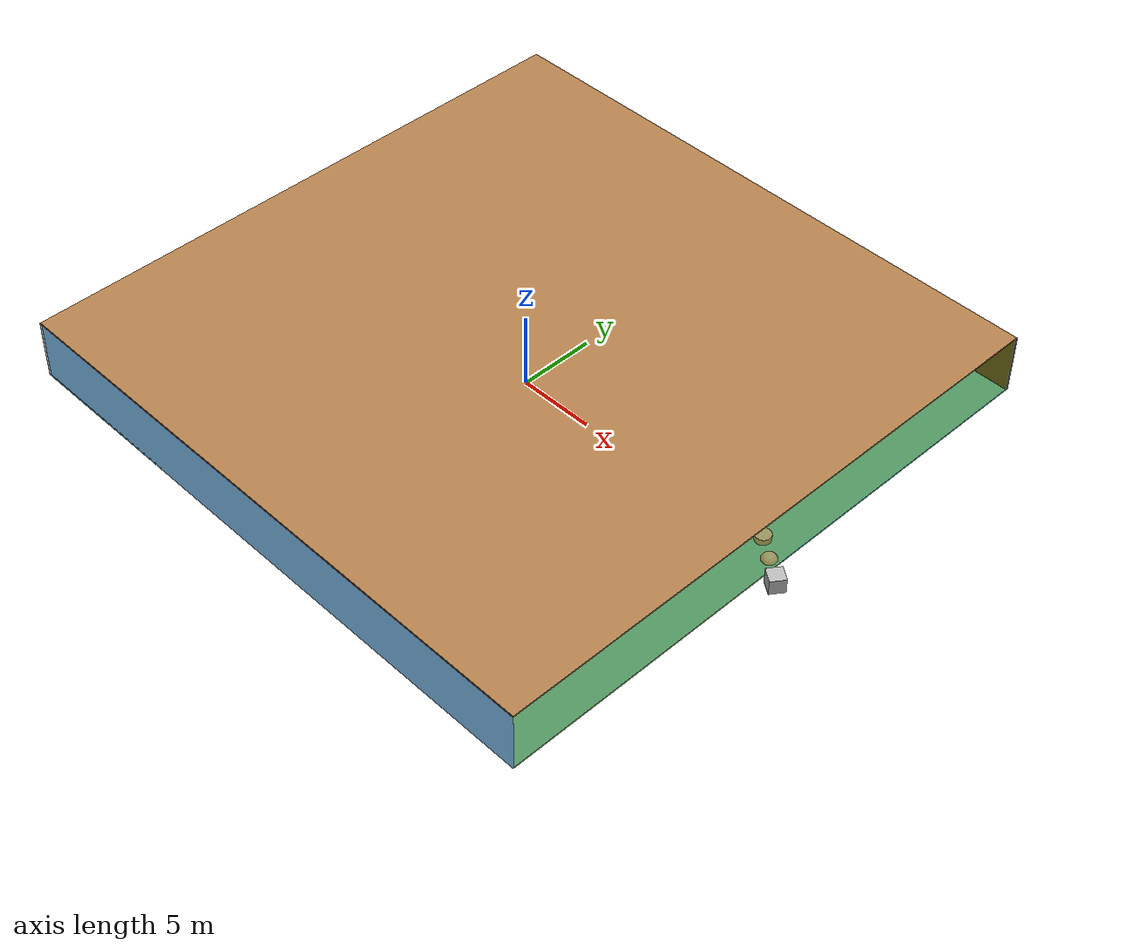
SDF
<sdf version="1.4">
 <world name="default">
  <physics type="ode">
   <max_step_size>0.001</max_step_size>
   <real_time_factor>1</real_time_factor>
   <real_time_update_rate>1000</real_time_update_rate>
   <gravity>0 0 -9.8</gravity>
  </physics>
  <scene><ambient>0.4 0.4 0.4 1</ambient><background>0.7 0.7 0.7 1</background><shadows>1</shadows></scene>
  <model name="Surrounding">
   <static>1</static>
   <link name="Ceiling">
    <collision name="Ceiling_Collision"><geometry><box><size>40 40 0.1</size></box></geometry></collision>
    <visual name="Ceiling_Visual">
     <geometry><box><size>40 40 0.1</size></box></geometry>
     <material>
      <script><uri>file://media/materials/scripts/gazebo.material</uri><name>Gazebo/WoodFloor</name></script>
     </material>
    </visual>
    <pose>0 0 4.05 0 0 0</pose>
   </link>
   <link name="Wall_South">
    <collision name="Wall_South_Collision">
     <geometry><box><size>40 0 4</size></box></geometry>
     <pose>0 0 2 0 -0 0</pose>
    </collision>
    <visual name="Wall_South_Visual">
     <pose>0 0 2 0 -0 0</pose>
     <geometry><box><size>40 0 4</size></box></geometry>
     <material>
      <script><uri>file://media/materials/scripts/gazebo.material</uri><name>Gazebo/SkyBlue</name></script>
     </material>
    </visual>
    <velocity_decay><linear>0</linear><angular>0</angular></velocity_decay>
    <pose>0 -20 0 0 -0 0</pose>
   </link>
   <link name="Wall_East">
    <collision name="Wall_21_Collision">
     <geometry><box><size>40 0 4</size></box></geometry>
     <pose>0 0 2 0 -0 0</pose>
    </collision>
    <visual name="Wall_21_Visual">
     <pose>0 0 2 0 -0 0</pose>
     <geometry><box><size>40 0 4</size></box></geometry>
     <material>
      <script>
       <uri>file://media/materials/scripts/gazebo.material</uri>
       <name>Gazebo/YellowTransparent</name>
      </script>
     </material>
    </visual>
    <velocity_decay><linear>0</linear><angular>0</angular></velocity_decay>
    <pose>20 0 0 0 -0 1.5708</pose>
   </link>
   <link name="Wall_North">
    <collision name="Wall_22_Collision">
     <geometry><box><size>40 0.2 4</size></box></geometry>
     <pose>0 0 2 0 -0 0</pose>
    </collision>
    <visual name="Wall_22_Visual">
     <pose>0 0 2 0 -0 0</pose>
     <geometry><box><size>40 0.2 4</size></box></geometry>
     <material>
      <script><uri>file://media/materials/scripts/gazebo.material</uri><name>Gazebo/Black</name></script>
     </material>
    </visual>
    <velocity_decay><linear>0</linear><angular>0</angular></velocity_decay>
    <pose>0 20 0 0 -0 0</pose>
   </link>
   <link name="Wall_West">
    <collision name="Wall_23_Collision">
     <geometry><box><size>40 0.2 4</size></box></geometry>
     <pose>0 0 2 0 -0 0</pose>
    </collision>
    <visual name="Wall_23_Visual">
     <pose>0 0 2 0 -0 0</pose>
     <geometry><box><size>40 0.2 4</size></box></geometry>
     <material>
      <script><uri>file://media/materials/scripts/gazebo.material</uri><name>Gazebo/WhiteGlow</name></script>
     </material>
    </visual>
    <velocity_decay><linear>0</linear><angular>0</angular></velocity_decay>
    <pose>-20 0 0 0 0 -1.5708</pose>
   </link>
   <link name="Ground_link">
    <collision name="collision">
     <pose>0 0 .05 0 -0 0</pose>
     <geometry><box><size>40 40 0.1</size></box></geometry>
    </collision>
    <visual name="visual">
     <pose>0 0 .05 0 -0 0</pose>
     <geometry><box><size>40 40 0.1</size></box></geometry>
     <material>
      <script>
       <uri>file://media/materials/scripts/gazebo.material</uri>
       <name>Gazebo/TurquoiseGlowOutline</name>
      </script>
     </material>
    </visual>
   </link>
   <static>1</static>
  </model>
  <spherical_coordinates>
   <surface_model>EARTH_WGS84</surface_model>
   <latitude_deg>0</latitude_deg>
   <longitude_deg>0</longitude_deg>
   <elevation>0</elevation>
   <heading_deg>0</heading_deg>
  </spherical_coordinates>
  <light name="lightball_0" type="diffuse">
   <diffuse>0.8 0.8 0.8 1</diffuse>
   <specular>0.2 0.2 0.2 1</specular>
   <attenuation>
    <range>100</range>
    <constant>0.7</constant>
    <linear>0.01</linear>
    <quadratic>0.001</quadratic>
   </attenuation>
   <direction>-0.5 0.1 -0.9</direction>
   <pose>-17.5740837357 12.6051082285 1.61214290657 0 0 0</pose>
  </light>
  <light name="lightball_1" type="diffuse">
   <diffuse>0.8 0.8 0.8 1</diffuse>
   <specular>0.2 0.2 0.2 1</specular>
   <attenuation>
    <range>100</range>
    <constant>0.7</constant>
    <linear>0.01</linear>
    <quadratic>0.001</quadratic>
   </attenuation>
   <direction>-0.5 0.1 -0.9</direction>
   <pose>0.743015556763 15.2392316844 2.57029508019 0 0 0</pose>
  </light>
  <light name="lightball_2" type="diffuse">
   <diffuse>0.8 0.8 0.8 1</diffuse>
   <specular>0.2 0.2 0.2 1</specular>
   <attenuation>
    <range>100</range>
    <constant>0.7</constant>
    <linear>0.01</linear>
    <quadratic>0.001</quadratic>
   </attenuation>
   <direction>-0.5 0.1 -0.9</direction>
   <pose>18.2368901628 8.42722163849 0.502295091635 0 0 0</pose>
  </light>
  <light name="lightball_3" type="diffuse">
   <diffuse>0.8 0.8 0.8 1</diffuse>
   <specular>0.2 0.2 0.2 1</specular>
   <attenuation>
    <range>100</range>
    <constant>0.7</constant>
    <linear>0.01</linear>
    <quadratic>0.001</quadratic>
   </attenuation>
   <direction>-0.5 0.1 -0.9</direction>
   <pose>-4.44998237867 18.3047323831 3.72938037236 0 0 0</pose>
  </light>
  <light name="lightball_4" type="diffuse">
   <diffuse>0.8 0.8 0.8 1</diffuse>
   <specular>0.2 0.2 0.2 1</specular>
   <attenuation>
    <range>100</range>
    <constant>0.7</constant>
    <linear>0.01</linear>
    <quadratic>0.001</quadratic>
   </attenuation>
   <direction>-0.5 0.1 -0.9</direction>
   <pose>10.0435196281 -2.46478487073 1.70079877648 0 0 0</pose>
  </light>
  <light name="lightball_5" type="diffuse">
   <diffuse>0.8 0.8 0.8 1</diffuse>
   <specular>0.2 0.2 0.2 1</specular>
   <attenuation>
    <range>100</range>
    <constant>0.7</constant>
    <linear>0.01</linear>
    <quadratic>0.001</quadratic>
   </attenuation>
   <direction>-0.5 0.1 -0.9</direction>
   <pose>-13.621027683 -4.30057524231 1.94451375625 0 0 0</pose>
  </light>
  <light name="lightball_6" type="diffuse">
   <diffuse>0.8 0.8 0.8 1</diffuse>
   <specular>0.2 0.2 0.2 1</specular>
   <attenuation>
    <range>100</range>
    <constant>0.7</constant>
    <linear>0.01</linear>
    <quadratic>0.001</quadratic>
   </attenuation>
   <direction>-0.5 0.1 -0.9</direction>
   <pose>8.19315201752 18.8515298985 2.55646592644 0 0 0</pose>
  </light>
  <light name="lightball_7" type="diffuse">
   <diffuse>0.8 0.8 0.8 1</diffuse>
   <specular>0.2 0.2 0.2 1</specular>
   <attenuation>
    <range>100</range>
    <constant>0.7</constant>
    <linear>0.01</linear>
    <quadratic>0.001</quadratic>
   </attenuation>
   <direction>-0.5 0.1 -0.9</direction>
   <pose>19.1241763937 8.16289777556 2.98417423203 0 0 0</pose>
  </light>
  <light name="lightball_8" type="diffuse">
   <diffuse>0.8 0.8 0.8 1</diffuse>
   <specular>0.2 0.2 0.2 1</specular>
   <attenuation>
    <range>100</range>
    <constant>0.7</constant>
    <linear>0.01</linear>
    <quadratic>0.001</quadratic>
   </attenuation>
   <direction>-0.5 0.1 -0.9</direction>
   <pose>-3.26915984035 -6.78054222237 1.93947125411 0 0 0</pose>
  </light>
  <light name="lightball_9" type="diffuse">
   <diffuse>0.8 0.8 0.8 1</diffuse>
   <specular>0.2 0.2 0.2 1</specular>
   <attenuation>
    <range>100</range>
    <constant>0.7</constant>
    <linear>0.01</linear>
    <quadratic>0.001</quadratic>
   </attenuation>
   <direction>-0.5 0.1 -0.9</direction>
   <pose>7.29141496249 6.82184155982 0.834126046536 0 0 0</pose>
  </light>
  <light name="lightball_10" type="diffuse">
   <diffuse>0.8 0.8 0.8 1</diffuse>
   <specular>0.2 0.2 0.2 1</specular>
   <attenuation>
    <range>100</range>
    <constant>0.7</constant>
    <linear>0.01</linear>
    <quadratic>0.001</quadratic>
   </attenuation>
   <direction>-0.5 0.1 -0.9</direction>
   <pose>4.24457495305 16.8127616208 1.48149043286 0 0 0</pose>
  </light>
  <light name="lightball_11" type="diffuse">
   <diffuse>0.8 0.8 0.8 1</diffuse>
   <specular>0.2 0.2 0.2 1</specular>
   <attenuation>
    <range>100</range>
    <constant>0.7</constant>
    <linear>0.01</linear>
    <quadratic>0.001</quadratic>
   </attenuation>
   <direction>-0.5 0.1 -0.9</direction>
   <pose>-17.509779447 -3.95552738196 1.78343486054 0 0 0</pose>
  </light>
  <light name="lightball_12" type="diffuse">
   <diffuse>0.8 0.8 0.8 1</diffuse>
   <specular>0.2 0.2 0.2 1</specular>
   <attenuation>
    <range>100</range>
    <constant>0.7</constant>
    <linear>0.01</linear>
    <quadratic>0.001</quadratic>
   </attenuation>
   <direction>-0.5 0.1 -0.9</direction>
   <pose>-4.93952280712 16.8685894324 3.79932426421 0 0 0</pose>
  </light>
  <light name="lightball_13" type="diffuse">
   <diffuse>0.8 0.8 0.8 1</diffuse>
   <specular>0.2 0.2 0.2 1</specular>
   <attenuation>
    <range>100</range>
    <constant>0.7</constant>
    <linear>0.01</linear>
    <quadratic>0.001</quadratic>
   </attenuation>
   <direction>-0.5 0.1 -0.9</direction>
   <pose>17.5133294382 -14.8242227908 2.93669687081 0 0 0</pose>
  </light>
  <include>
   <uri>model://robocup_3Dsim_goal</uri>
   <pose>-17.5305174551 6.71780393388 0 0 0 1.3440993721</pose>
  </include>
  <include>
   <uri>model://robocup_3Dsim_goal</uri>
   <pose>-18.2213798194 14.5366105553 0 0 0 3.05300245029</pose>
  </include>
  <include><uri>model://cabinet</uri><pose>-17.249727434 17.5104981594 0 0 0 2.86015376638</pose></include>
  <include><uri>model://table</uri><pose>-13.857203398 -1.66092171955 0 0 0 0.0590231945379</pose></include>
  <include>
   <uri>model://robocup_3Dsim_goal</uri>
   <pose>-15.6643632363 8.89509544949 0 0 0 2.0271763737</pose>
  </include>
  <include><uri>model://cabinet</uri><pose>-11.1970518297 -6.57656894726 0 0 0 2.50902259549</pose></include>
  <include><uri>model://table</uri><pose>-9.11033168446 -14.5289076849 0 0 0 2.73689843473</pose></include>
  <include><uri>model://cabinet</uri><pose>-7.86986616207 -9.67750024584 0 0 0 0.472284220156</pose></include>
  <include><uri>model://table</uri><pose>-5.76496578096 -4.44992952299 0 0 0 0.804138352814</pose></include>
  <include><uri>model://cabinet</uri><pose>-5.77201919728 7.66880884135 0 0 0 0.170370545431</pose></include>
  <include><uri>model://table</uri><pose>-5.99880355948 17.6988429133 0 0 0 0.0992878451426</pose></include>
  <include>
   <uri>model://textured_shapes</uri>
   <pose>-3.19053312269 -10.3907598262 0 0 0 2.21549682263</pose>
  </include>
  <include><uri>model://cabinet</uri><pose>-1.9338199711 0.093766023236 0 0 0 2.29841165167</pose></include>
  <include><uri>model://table</uri><pose>-1.95988827745 8.93490903734 0 0 0 2.08777450093</pose></include>
  <include>
   <uri>model://construction_cone</uri>
   <pose>-0.282736714433 12.8946636971 0 0 0 1.71363743333</pose>
  </include>
  <include><uri>model://cabinet</uri><pose>4.47368790478 -16.8461251126 0 0 0 2.94059836677</pose></include>
  <include><uri>model://cabinet</uri><pose>2.33893166497 -7.61394661894 0 0 0 0.464595876382</pose></include>
  <include>
   <uri>model://construction_cone</uri>
   <pose>3.09321491977 -1.69393189958 0 0 0 0.494597109601</pose>
  </include>
  <include><uri>model://cabinet</uri><pose>4.44313603478 13.3168563216 0 0 0 2.8754972915</pose></include>
  <include><uri>model://cabinet</uri><pose>7.31856234421 8.49919213588 0 0 0 2.51453836058</pose></include>
  <include>
   <uri>model://construction_cone</uri>
   <pose>10.3562698916 -14.1205981148 0 0 0 3.1013210023</pose>
  </include>
  <include>
   <uri>model://robocup_3Dsim_goal</uri>
   <pose>14.865405696 -11.4158045161 0 0 0 0.636401692539</pose>
  </include>
  <include>
   <uri>model://robocup_3Dsim_goal</uri>
   <pose>15.2771738704 14.4255502396 0 0 0 1.14373974354</pose>
  </include>
  <include>
   <uri>model://textured_shapes</uri>
   <pose>19.3957625728 -0.322506690059 0 0 0 0.96052808566</pose>
  </include>
 </world>
</sdf>

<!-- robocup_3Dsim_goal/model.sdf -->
<sdf version="1.5">
  <model name="robocup_3d_goal">
    <static>true</static>
    <link name="left_post">
      <pose>0 1.05 0.45 0 0 0</pose>
      <collision name="collision">
        <geometry>
          <cylinder>
            <radius>0.05</radius>
            <length>0.9</length>
          </cylinder>
        </geometry>
      </collision>
      <visual name="visual">
        <geometry>
          <cylinder>
            <radius>0.05</radius>
            <length>0.9</length>
          </cylinder>
        </geometry>
        <material>
          <script>
            <uri>file://media/materials/scripts/gazebo.material</uri>
            <name>Gazebo/ZincYellow</name>
          </script>
        </material>
      </visual>
    </link>
    <link name="left_support_horiz_lower">
      <pose>0.30 1.05 0.01 0 0 0</pose>
      <collision name="collision">
        <geometry>
          <box>
            <size>0.50 0.02 0.02</size>
          </box>
        </geometry>
      </collision>
      <visual name="visual">
        <geometry>
          <box>
            <size>0.50 0.02 0.02</size>
          </box>
        </geometry>
        <material>
          <script>
            <uri>file://media/materials/scripts/gazebo.material</uri>
            <name>Gazebo/White</name>
          </script>
        </material>
      </visual>
    </link>
    <link name="left_support_horiz_upper">
      <pose>0.30 1.05 0.79 0 0 0</pose>
      <collision name="collision">
        <geometry>
          <box>
            <size>0.50 0.02 0.02</size>
          </box>
        </geometry>
      </collision>
      <visual name="visual">
        <geometry>
          <box>
            <size>0.50 0.02 0.02</size>
          </box>
        </geometry>
        <material>
          <script>
            <uri>file://media/materials/scripts/gazebo.material</uri>
            <name>Gazebo/White</name>
          </script>
        </material>
      </visual>
    </link>
    <link name="left_support_vertical">
      <pose>0.56 1.05 0.4 0 1.5708 0</pose>
      <collision name="collision">
        <geometry>
          <box>
            <size>0.80 0.02 0.02</size>
          </box>
        </geometry>
      </collision>
      <visual name="visual">
        <geometry>
          <box>
            <size>0.80 0.02 0.02</size>
          </box>
        </geometry>
        <material>
          <script>
            <uri>file://media/materials/scripts/gazebo.material</uri>
            <name>Gazebo/White</name>
          </script>
        </material>
      </visual>
    </link>
    <link name="right_support_horiz_lower">
      <pose>0.30 -1.05 0.01 0 0 0</pose>
      <collision name="collision">
        <geometry>
          <box>
            <size>0.50 0.02 0.02</size>
          </box>
        </geometry>
      </collision>
      <visual name="visual">
        <geometry>
          <box>
            <size>0.50 0.02 0.02</size>
          </box>
        </geometry>
        <material>
          <script>
            <uri>file://media/materials/scripts/gazebo.material</uri>
            <name>Gazebo/White</name>
          </script>
        </material>
      </visual>
    </link>
    <link name="right_support_horiz_upper">
      <pose>0.30 -1.05 0.79 0 0 0</pose>
      <collision name="collision">
        <geometry>
          <box>
            <size>0.50 0.02 0.02</size>
          </box>
        </geometry>
      </collision>
      <visual name="visual">
        <geometry>
          <box>
            <size>0.50 0.02 0.02</size>
          </box>
        </geometry>
        <material>
          <script>
            <uri>file://media/materials/scripts/gazebo.material</uri>
            <name>Gazebo/White</name>
          </script>
        </material>
      </visual>
    </link>
    <link name="right_support_vertical">
      <pose>0.56 -1.05 0.4 0 1.5708 0</pose>
      <collision name="collision">
        <geometry>
          <box>
            <size>0.80 0.02 0.02</size>
          </box>
        </geometry>
      </collision>
      <visual name="visual">
        <geometry>
          <box>
            <size>0.80 0.02 0.02</size>
          </box>
        </geometry>
        <material>
          <script>
            <uri>file://media/materials/scripts/gazebo.material</uri>
            <name>Gazebo/White</name>
          </script>
        </material>
      </visual>
    </link>
    <link name="center_support_horiz_lower">
      <pose>0.56 0 0.01 0 1.5708 0</pose>
      <collision name="collision">
        <geometry>
          <box>
            <size>0.02 2.08 0.02</size>
          </box>
        </geometry>
      </collision>
      <visual name="visual">
        <geometry>
          <box>
            <size>0.02 2.08 0.02</size>
          </box>
        </geometry>
        <material>
          <script>
            <uri>file://media/materials/scripts/gazebo.material</uri>
            <name>Gazebo/White</name>
          </script>
        </material>
      </visual>
    </link>
    <link name="center_support_horiz_upper">
      <pose>0.56 0 0.79 0 1.5708 0</pose>
      <collision name="collision">
        <geometry>
          <box>
            <size>0.02 2.08 0.02</size>
          </box>
        </geometry>
      </collision>
      <visual name="visual">
        <geometry>
          <box>
            <size>0.02 2.08 0.02</size>
          </box>
        </geometry>
        <material>
          <script>
            <uri>file://media/materials/scripts/gazebo.material</uri>
            <name>Gazebo/White</name>
          </script>
        </material>
      </visual>
    </link>
    <link name="right_post">
      <pose>0 -1.05 0.45 0 0 0</pose>
      <collision name="collision">
        <geometry>
          <cylinder>
            <radius>0.05</radius>
            <length>0.9</length>
          </cylinder>
        </geometry>
      </collision>
      <visual name="visual">
        <geometry>
          <cylinder>
            <radius>0.05</radius>
            <length>0.9</length>
          </cylinder>
        </geometry>
        <material>
          <script>
            <uri>file://media/materials/scripts/gazebo.material</uri>
            <name>Gazebo/ZincYellow</name>
          </script>
        </material>
      </visual>
    </link>
    <link name="crossbar">
      <pose>0 0 0.85 1.57 1.57 0</pose>
      <collision name="collision">
        <geometry>
          <cylinder>
            <radius>0.05</radius>
            <length>2.0</length>
          </cylinder>
        </geometry>
      </collision>
      <visual name="visual">
        <geometry>
          <cylinder>
            <radius>0.05</radius>
            <length>2.0</length>
          </cylinder>
        </geometry>
        <material>
          <script>
            <uri>file://media/materials/scripts/gazebo.material</uri>
            <name>Gazebo/ZincYellow</name>
          </script>
        </material>
      </visual>
    </link>
    <link name="center_net">
      <pose>0.56 0 0.40 0 0 0</pose>
      <collision name="collision">
        <geometry>
          <box>
            <size>0.01 2.1 0.80</size>
          </box>
        </geometry>
      </collision>
      <visual name="visual">
        <geometry>
          <box>
            <size>0.01 2.1 0.80</size>
          </box>
        </geometry>
        <material>
          <script>
            <uri>model://../model_source/models/robocup09_spl_field/materials/scripts/</uri>
            <uri>model://../model_source/models/robocup09_spl_field/materials/textures/</uri>
            <name>RoboCup/Net</name>
          </script>
        </material>
      </visual>
    </link>
    <link name="left_net">
      <pose>0.30 1.05 0.40 0 0 0</pose>
      <collision name="collision">
        <geometry>
          <box>
            <size>0.50 0.01 0.76</size>
          </box>
        </geometry>
      </collision>
      <visual name="visual">
        <geometry>
          <box>
            <size>0.50 0.01 0.76</size>
          </box>
        </geometry>
        <material>
          <script>
            <uri>model://../model_source/models/robocup09_spl_field/materials/scripts/</uri>
            <uri>model://../model_source/models/robocup09_spl_field/materials/textures/</uri>
            <name>RoboCup/Net</name>
          </script>
        </material>
      </visual>
    </link>
    <link name="right_net">
      <pose>0.30 -1.05 0.40 0 0 0</pose>
      <collision name="collision">
        <geometry>
          <box>
            <size>0.50 0.01 0.76</size>
          </box>
        </geometry>
      </collision>
      <visual name="visual">
        <geometry>
          <box>
            <size>0.50 0.01 0.76</size>
          </box>
        </geometry>
        <material>
          <script>
            <uri>model://../model_source/models/robocup09_spl_field/materials/scripts/</uri>
            <uri>model://../model_source/models/robocup09_spl_field/materials/textures/</uri>
            <name>RoboCup/Net</name>
          </script>
        </material>
      </visual>
    </link>
  </model>
</sdf>

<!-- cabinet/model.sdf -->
<sdf version="1.5">
  <model name="cabinet">
    <static>true</static>
    <link name="cabinet_bottom_plate">
      <inertial>
        <pose>0 0 -1 0 0 0</pose>
        <inertia>
          <ixx>2.050000</ixx>
          <ixy>0</ixy>
          <ixz>0</ixz>
          <iyy>2.050000</iyy>
          <iyz>0</iyz>
          <izz>2.050000</izz>
        </inertia>
        <mass>25.000000</mass>
      </inertial>
      <collision name="cabinet_bottom_plate_geom">
        <pose>0 0 0.010000 0 0 0</pose>
        <geometry>
          <box>
            <size>0.450000 0.450000 0.020000</size>
          </box>
        </geometry>
      </collision>
      <visual name="cabinet_bottom_plate_geom_visual">
        <pose>0 0 0.010000 0 0 0</pose>
        <geometry>
          <box>
            <size>0.450000 0.450000 0.020000</size>
          </box>
        </geometry>
        <material>
          <script>
            <uri>model://media/materials/scripts/gazebo.material</uri>
            <name>Gazebo/Wood</name>
          </script>
        </material>
      </visual>
      <collision name="cabinet_bottom_plate_geom_cabinet_back_plate">
        <pose>0.235000 0 0.510000 0 0 0</pose>
        <geometry>
          <box>
            <size>0.020000 0.450000 1.020000</size>
          </box>
        </geometry>
      </collision>
      <visual name="cabinet_bottom_plate_geom_cabinet_back_plate_visual">
        <pose>0.235000 0 0.510000 0 0 0</pose>
        <geometry>
          <box>
            <size>0.020000 0.450000 1.020000</size>
          </box>
        </geometry>
        <material>
          <script>
            <uri>model://media/materials/scripts/gazebo.material</uri>
            <name>Gazebo/Wood</name>
          </script>
        </material>
      </visual>
      <collision name="cabinet_bottom_plate_geom_cabinet_left_plate">
        <pose>0 0.235000 0.510000 0 0 0</pose>
        <geometry>
          <box>
            <size>0.450000 0.020000 1.020000</size>
          </box>
        </geometry>
      </collision>
      <visual name="cabinet_bottom_plate_geom_cabinet_left_plate_visual">
        <pose>0 0.235000 0.510000 0 0 0</pose>
        <geometry>
          <box>
            <size>0.450000 0.020000 1.020000</size>
          </box>
        </geometry>
        <material>
          <script>
            <uri>model://media/materials/scripts/gazebo.material</uri>
            <name>Gazebo/Wood</name>
          </script>
        </material>
      </visual>
      <collision name="cabinet_bottom_plate_geom_cabinet_middle_plate">
        <pose>0 0 0.510000 0 0 0</pose>
        <geometry>
          <box>
            <size>0.450000 0.450000 0.020000</size>
          </box>
        </geometry>
      </collision>
      <visual name="cabinet_bottom_plate_geom_cabinet_middle_plate_visual">
        <pose>0 0 0.510000 0 0 0</pose>
        <geometry>
          <box>
            <size>0.450000 0.450000 0.020000</size>
          </box>
        </geometry>
        <material>
          <script>
            <uri>model://media/materials/scripts/gazebo.material</uri>
            <name>Gazebo/Wood</name>
          </script>
        </material>
      </visual>
      <collision name="cabinet_bottom_plate_geom_cabinet_right_plate">
        <pose>0 -0.235000 0.510000 0 0 0</pose>
        <geometry>
          <box>
            <size>0.450000 0.020000 1.020000</size>
          </box>
        </geometry>
      </collision>
      <visual name="cabinet_bottom_plate_geom_cabinet_right_plate_visual">
        <pose>0 -0.235000 0.510000 0 0 0</pose>
        <geometry>
          <box>
            <size>0.450000 0.020000 1.020000</size>
          </box>
        </geometry>
        <material>
          <script>
            <uri>model://media/materials/scripts/gazebo.material</uri>
            <name>Gazebo/Wood</name>
          </script>
        </material>
      </visual>
      <collision name="cabinet_bottom_plate_geom_cabinet_top_plate">
        <pose>0 0 1.010000 0 0 0</pose>
        <geometry>
          <box>
            <size>0.450000 0.450000 0.020000</size>
          </box>
        </geometry>
      </collision>
      <visual name="cabinet_bottom_plate_geom_cabinet_top_plate_visual">
        <pose>0 0 1.010000 0 0 0</pose>
        <geometry>
          <box>
            <size>0.450000 0.450000 0.020000</size>
          </box>
        </geometry>
        <material>
          <script>
            <uri>model://media/materials/scripts/gazebo.material</uri>
            <name>Gazebo/Wood</name>
          </script>
        </material>
      </visual>
    </link>
  </model>
</sdf>

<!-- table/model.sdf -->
<sdf version="1.5">
  <model name="table">
    <static>true</static>
    <link name="link">
      <collision name="surface">
        <pose>0 0 1.0 0 0 0</pose>
        <geometry>
          <box>
            <size>1.5 0.8 0.03</size>
          </box>
        </geometry>
        <surface>
          <friction>
            <ode>
              <mu>0.6</mu>
              <mu2>0.6</mu2>
            </ode>
          </friction>
        </surface>
      </collision>
      <visual name="visual1">
        <pose>0 0 1.0 0 0 0</pose>
        <geometry>
          <box>
            <size>1.5 0.8 0.03</size>
          </box>
        </geometry>
        <material>
          <script>
            <uri>model://media/materials/scripts/gazebo.material</uri>
            <name>Gazebo/Wood</name>
          </script>
        </material>
      </visual>
      <collision name="front_left_leg">
        <pose>0.68 0.38 0.5 0 0 0</pose>
        <geometry>
          <cylinder>
            <radius>0.02</radius>
            <length>1.0</length>
          </cylinder>
        </geometry>
      </collision>
      <visual name="front_left_leg">
        <pose>0.68 0.38 0.5 0 0 0</pose>
        <geometry>
          <cylinder>
            <radius>0.02</radius>
            <length>1.0</length>
          </cylinder>
        </geometry>
        <material>
          <script>
            <uri>model://media/materials/scripts/gazebo.material</uri>
            <name>Gazebo/Grey</name>
          </script>
        </material>
      </visual>
      <collision name="front_right_leg">
        <pose>0.68 -0.38 0.5 0 0 0</pose>
        <geometry>
          <cylinder>
            <radius>0.02</radius>
            <length>1.0</length>
          </cylinder>
        </geometry>
      </collision>
      <visual name="front_right_leg">
        <pose>0.68 -0.38 0.5 0 0 0</pose>
        <geometry>
          <cylinder>
            <radius>0.02</radius>
            <length>1.0</length>
          </cylinder>
        </geometry>
        <material>
          <script>
            <uri>model://media/materials/scripts/gazebo.material</uri>
            <name>Gazebo/Grey</name>
          </script>
        </material>
      </visual>
      <collision name="back_right_leg">
        <pose>-0.68 -0.38 0.5 0 0 0</pose>
        <geometry>
          <cylinder>
            <radius>0.02</radius>
            <length>1.0</length>
          </cylinder>
        </geometry>
      </collision>
      <visual name="back_right_leg">
        <pose>-0.68 -0.38 0.5 0 0 0</pose>
        <geometry>
          <cylinder>
            <radius>0.02</radius>
            <length>1.0</length>
          </cylinder>
        </geometry>
        <material>
          <script>
            <uri>model://media/materials/scripts/gazebo.material</uri>
            <name>Gazebo/Grey</name>
          </script>
        </material>
      </visual>
      <collision name="back_left_leg">
        <pose>-0.68 0.38 0.5 0 0 0</pose>
        <geometry>
          <cylinder>
            <radius>0.02</radius>
            <length>1.0</length>
          </cylinder>
        </geometry>
      </collision>
      <visual name="back_left_leg">
        <pose>-0.68 0.38 0.5 0 0 0</pose>
        <geometry>
          <cylinder>
            <radius>0.02</radius>
            <length>1.0</length>
          </cylinder>
        </geometry>
        <material>
          <script>
            <uri>model://media/materials/scripts/gazebo.material</uri>
            <name>Gazebo/Grey</name>
          </script>
        </material>
      </visual>
    </link>
  </model>
</sdf>

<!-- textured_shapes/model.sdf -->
<sdf version="1.6">
  <model name="textured_shapes">
    <pose>0 0 0.5 0 0 0</pose>
    <link name="box">
      <pose>0 -1.5 0 0 0 0</pose>
      <collision name="collision">
        <geometry>
          <box>
            <size>1 1 1</size>
          </box>
        </geometry>
      </collision>
      <visual name="visual">
        <geometry>
          <box>
            <size>1 1 1</size>
          </box>
        </geometry>
        <material>
          <script>
            <uri>model://../model_source/models/textured_shapes/materials/scripts</uri>
            <uri>model://../model_source/models/textured_shapes/materials/textures</uri>
            <name>TexturedShape/Squares</name>
          </script>
        </material>
      </visual>
    </link>
    <link name="sphere">
      <collision name="collision">
        <geometry>
          <sphere>
            <radius>0.5</radius>
          </sphere>
        </geometry>
      </collision>
      <visual name="visual">
        <geometry>
          <sphere>
            <radius>0.5</radius>
          </sphere>
        </geometry>
        <material>
          <script>
            <uri>model://../model_source/models/textured_shapes/materials/scripts</uri>
            <uri>model://../model_source/models/textured_shapes/materials/textures</uri>
            <name>TexturedShape/Squares</name>
          </script>
        </material>
      </visual>
    </link>
    <link name="cylinder">
      <pose>0 1.5 0 0 0 0</pose>
      <collision name="collision">
        <geometry>
          <cylinder>
            <radius>0.5</radius>
            <length>1</length>
          </cylinder>
        </geometry>
      </collision>
      <visual name="visual">
        <geometry>
          <cylinder>
            <radius>0.5</radius>
            <length>1</length>
          </cylinder>
        </geometry>
        <material>
          <script>
            <uri>model://../model_source/models/textured_shapes/materials/scripts</uri>
            <uri>model://../model_source/models/textured_shapes/materials/textures</uri>
            <name>TexturedShape/Squares</name>
          </script>
        </material>
      </visual>
    </link>
  </model>
</sdf>

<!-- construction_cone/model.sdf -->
<sdf version="1.5">
  <model name="Construction Cone">
    <link name="link">
      <collision name="collision">
        <geometry>
          <mesh>
            <scale>10 10 10</scale>
            <uri>file://isr-testbed/construction_cone/meshes/construction_cone.dae</uri>
          </mesh>
        </geometry>
      </collision>
      <visual name="visual">
        <geometry>
          <mesh>
            <scale>10 10 10</scale>
            <uri>file://isr-testbed/construction_cone/meshes/construction_cone.dae</uri>
          </mesh>
        </geometry>
      </visual>
    </link>
  </model>
</sdf>
